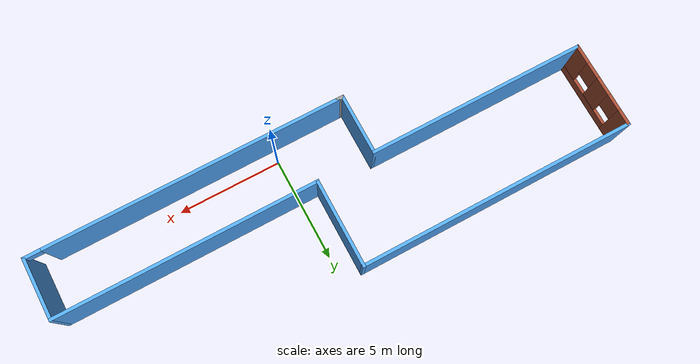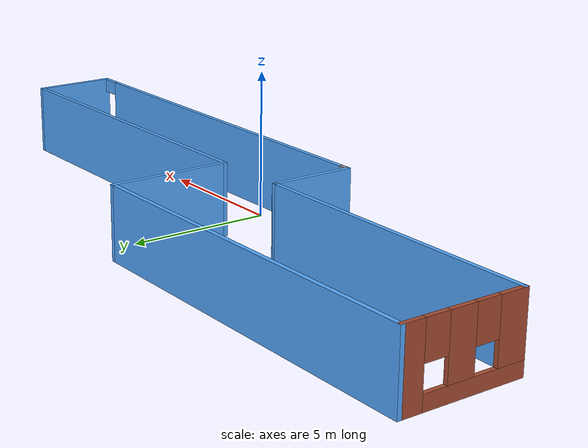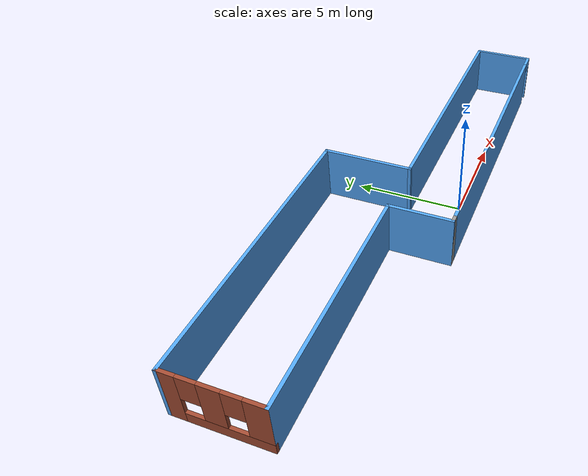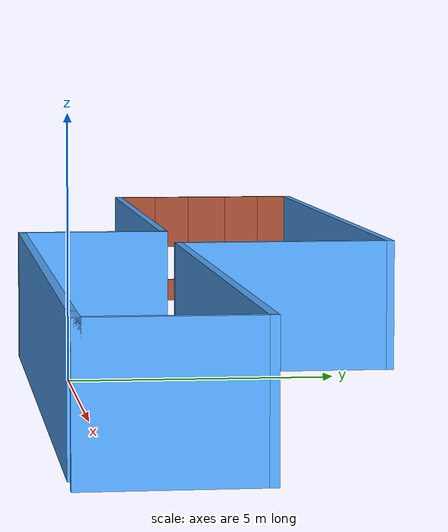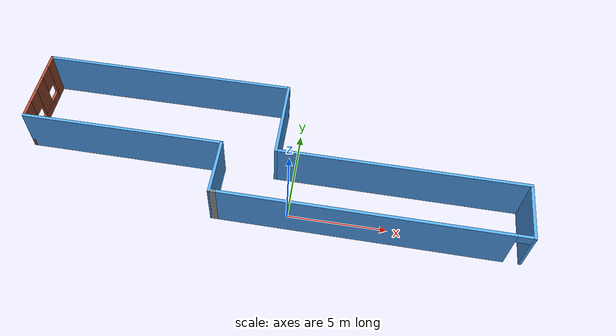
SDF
<?xml version='1.0'?>
<sdf version='1.6'>
  <model name='world'>
    <plugin name="welcome_message" filename="libwelcome_message.so"/>
    <pose frame=''>-1.315 2.805 0 0 -0 0</pose>
    <link name='Wall_0'>
      <pose frame=''>5.3 -3.475 0 0 -0 0</pose>
      <visual name='Wall_0_Visual_0'>
        <pose frame=''>-0.428163 0 1.25 0 -0 0</pose>
        <geometry>
          <box>
            <size>14.1437 0.15 2.5</size>
          </box>
        </geometry>
        <material>
          <script>
            <uri>file://media/materials/scripts/gazebo.material</uri>
            <name>Gazebo/Grey</name>
          </script>
          <ambient>0.333333 0.666667 1 1</ambient>
        </material>
        <meta>
          <layer>0</layer>
        </meta>
      </visual>
      <collision name='Wall_0_Collision_0'>
        <geometry>
          <box>
            <size>14.1437 0.15 2.5</size>
          </box>
        </geometry>
        <pose frame=''>-0.428163 0 1.25 0 -0 0</pose>
      </collision>
      <visual name='Wall_0_Visual_1'>
        <pose frame=''>7.07184 0 2.25 0 -0 0</pose>
        <geometry>
          <box>
            <size>0.856327 0.15 0.5</size>
          </box>
        </geometry>
        <material>
          <script>
            <uri>file://media/materials/scripts/gazebo.material</uri>
            <name>Gazebo/Grey</name>
          </script>
          <ambient>0.333333 0.666667 1 1</ambient>
        </material>
        <meta>
          <layer>0</layer>
        </meta>
      </visual>
      <collision name='Wall_0_Collision_1'>
        <geometry>
          <box>
            <size>0.856327 0.15 0.5</size>
          </box>
        </geometry>
        <pose frame=''>7.07184 0 2.25 0 -0 0</pose>
      </collision>
    </link>
    <link name='Wall_1'>
      <collision name='Wall_1_Collision'>
        <geometry>
          <box>
            <size>3 0.15 2.5</size>
          </box>
        </geometry>
        <pose frame=''>0 0 1.25 0 -0 0</pose>
      </collision>
      <visual name='Wall_1_Visual'>
        <pose frame=''>0 0 1.25 0 -0 0</pose>
        <geometry>
          <box>
            <size>3 0.15 2.5</size>
          </box>
        </geometry>
        <material>
          <script>
            <uri>file://media/materials/scripts/gazebo.material</uri>
            <name>Gazebo/Grey</name>
          </script>
          <ambient>0.333333 0.666667 1 1</ambient>
        </material>
        <meta>
          <layer>0</layer>
        </meta>
      </visual>
      <pose frame=''>12.725 -2.05 0 0 -0 1.5708</pose>
    </link>
    <link name='Wall_2'>
      <collision name='Wall_2_Collision'>
        <geometry>
          <box>
            <size>12.5 0.15 2.5</size>
          </box>
        </geometry>
        <pose frame=''>0 0 1.25 0 -0 0</pose>
      </collision>
      <visual name='Wall_2_Visual'>
        <pose frame=''>0 0 1.25 0 -0 0</pose>
        <geometry>
          <box>
            <size>12.5 0.15 2.5</size>
          </box>
        </geometry>
        <material>
          <script>
            <uri>file://media/materials/scripts/gazebo.material</uri>
            <name>Gazebo/Grey</name>
          </script>
          <ambient>0.333333 0.666667 1 1</ambient>
        </material>
        <meta>
          <layer>0</layer>
        </meta>
      </visual>
      <pose frame=''>6.55 -0.625 0 0 -0 3.14159</pose>
    </link>
    <link name='Wall_3'>
      <collision name='Wall_3_Collision'>
        <geometry>
          <box>
            <size>4.25 0.15 2.5</size>
          </box>
        </geometry>
        <pose frame=''>0 0 1.25 0 -0 0</pose>
      </collision>
      <visual name='Wall_3_Visual'>
        <pose frame=''>0 0 1.25 0 -0 0</pose>
        <geometry>
          <box>
            <size>4.25 0.15 2.5</size>
          </box>
        </geometry>
        <material>
          <script>
            <uri>file://media/materials/scripts/gazebo.material</uri>
            <name>Gazebo/Grey</name>
          </script>
          <ambient>0.333333 0.666667 1 1</ambient>
        </material>
        <meta>
          <layer>0</layer>
        </meta>
      </visual>
      <pose frame=''>0.375 1.425 0 0 -0 1.5708</pose>
    </link>
    <link name='Wall_4'>
      <collision name='Wall_4_Collision'>
        <geometry>
          <box>
            <size>13.25 0.15 2.5</size>
          </box>
        </geometry>
        <pose frame=''>0 0 1.25 0 -0 0</pose>
      </collision>
      <visual name='Wall_4_Visual'>
        <pose frame=''>0 0 1.25 0 -0 0</pose>
        <geometry>
          <box>
            <size>13.25 0.15 2.5</size>
          </box>
        </geometry>
        <material>
          <script>
            <uri>file://media/materials/scripts/gazebo.material</uri>
            <name>Gazebo/Grey</name>
          </script>
          <ambient>0.333333 0.666667 1 1</ambient>
        </material>
        <meta>
          <layer>0</layer>
        </meta>
      </visual>
      <pose frame=''>-6.175 3.475 0 0 -0 3.14159</pose>
    </link>
    <link name='Wall_5'>
      <pose frame=''>-12.725 1.425 0 0 0 -1.5708</pose>
      <visual name='Wall_5_Visual_0'>
        <pose frame=''>-1.72505 0 1.25 0 -0 0</pose>
        <geometry>
          <box>
            <size>0.799901 0.15 2.5</size>
          </box>
        </geometry>
        <material>
          <script>
            <uri>file://media/materials/scripts/gazebo.material</uri>
            <name>Gazebo/Bricks</name>
          </script>
          <ambient>0.333333 0.666667 1 1</ambient>
        </material>
        <meta>
          <layer>0</layer>
        </meta>
      </visual>
      <collision name='Wall_5_Collision_0'>
        <geometry>
          <box>
            <size>0.799901 0.15 2.5</size>
          </box>
        </geometry>
        <pose frame=''>-1.72505 0 1.25 0 -0 0</pose>
      </collision>
      <visual name='Wall_5_Visual_1'>
        <pose frame=''>0.399951 0 0.25 0 -0 0</pose>
        <geometry>
          <box>
            <size>3.4501 0.15 0.5</size>
          </box>
        </geometry>
        <material>
          <script>
            <uri>file://media/materials/scripts/gazebo.material</uri>
            <name>Gazebo/Bricks</name>
          </script>
          <ambient>0.333333 0.666667 1 1</ambient>
        </material>
        <meta>
          <layer>0</layer>
        </meta>
      </visual>
      <collision name='Wall_5_Collision_1'>
        <geometry>
          <box>
            <size>3.4501 0.15 0.5</size>
          </box>
        </geometry>
        <pose frame=''>0.399951 0 0.25 0 -0 0</pose>
      </collision>
      <visual name='Wall_5_Visual_2'>
        <pose frame=''>-0.078699 0 1.5 0 -0 0</pose>
        <geometry>
          <box>
            <size>0.8928 0.15 2</size>
          </box>
        </geometry>
        <material>
          <script>
            <uri>file://media/materials/scripts/gazebo.material</uri>
            <name>Gazebo/Bricks</name>
          </script>
          <ambient>0.333333 0.666667 1 1</ambient>
        </material>
        <meta>
          <layer>0</layer>
        </meta>
      </visual>
      <collision name='Wall_5_Collision_2'>
        <geometry>
          <box>
            <size>0.8928 0.15 2</size>
          </box>
        </geometry>
        <pose frame=''>-0.078699 0 1.5 0 -0 0</pose>
      </collision>
      <visual name='Wall_5_Visual_3'>
        <pose frame=''>1.64635 0 1.5 0 -0 0</pose>
        <geometry>
          <box>
            <size>0.957299 0.15 2</size>
          </box>
        </geometry>
        <material>
          <script>
            <uri>file://media/materials/scripts/gazebo.material</uri>
            <name>Gazebo/Bricks</name>
          </script>
          <ambient>0.333333 0.666667 1 1</ambient>
        </material>
        <meta>
          <layer>0</layer>
        </meta>
      </visual>
      <collision name='Wall_5_Collision_3'>
        <geometry>
          <box>
            <size>0.957299 0.15 2</size>
          </box>
        </geometry>
        <pose frame=''>1.64635 0 1.5 0 -0 0</pose>
      </collision>
      <visual name='Wall_5_Visual_4'>
        <pose frame=''>-0.925099 0 1.9 0 -0 0</pose>
        <geometry>
          <box>
            <size>0.8 0.15 1.2</size>
          </box>
        </geometry>
        <material>
          <script>
            <uri>file://media/materials/scripts/gazebo.material</uri>
            <name>Gazebo/Bricks</name>
          </script>
          <ambient>0.333333 0.666667 1 1</ambient>
        </material>
        <meta>
          <layer>0</layer>
        </meta>
      </visual>
      <collision name='Wall_5_Collision_4'>
        <geometry>
          <box>
            <size>0.8 0.15 1.2</size>
          </box>
        </geometry>
        <pose frame=''>-0.925099 0 1.9 0 -0 0</pose>
      </collision>
      <visual name='Wall_5_Visual_5'>
        <pose frame=''>0.767701 0 1.9 0 -0 0</pose>
        <geometry>
          <box>
            <size>0.8 0.15 1.2</size>
          </box>
        </geometry>
        <material>
          <script>
            <uri>file://media/materials/scripts/gazebo.material</uri>
            <name>Gazebo/Bricks</name>
          </script>
          <ambient>0.333333 0.666667 1 1</ambient>
        </material>
        <meta>
          <layer>0</layer>
        </meta>
      </visual>
      <collision name='Wall_5_Collision_5'>
        <geometry>
          <box>
            <size>0.8 0.15 1.2</size>
          </box>
        </geometry>
        <pose frame=''>0.767701 0 1.9 0 -0 0</pose>
      </collision>
    </link>
    <link name='Wall_6'>
      <collision name='Wall_6_Collision'>
        <geometry>
          <box>
            <size>10.5 0.15 2.5</size>
          </box>
        </geometry>
        <pose frame=''>0 0 1.25 0 -0 0</pose>
      </collision>
      <visual name='Wall_6_Visual'>
        <pose frame=''>0 0 1.25 0 -0 0</pose>
        <geometry>
          <box>
            <size>10.5 0.15 2.5</size>
          </box>
        </geometry>
        <material>
          <script>
            <uri>file://media/materials/scripts/gazebo.material</uri>
            <name>Gazebo/Grey</name>
          </script>
          <ambient>0.333333 0.666667 1 1</ambient>
        </material>
        <meta>
          <layer>0</layer>
        </meta>
      </visual>
      <pose frame=''>-7.55 -0.625 0 0 -0 0</pose>
    </link>
    <link name='Wall_7'>
      <collision name='Wall_7_Collision'>
        <geometry>
          <box>
            <size>3 0.15 2.5</size>
          </box>
        </geometry>
        <pose frame=''>0 0 1.25 0 -0 0</pose>
      </collision>
      <visual name='Wall_7_Visual'>
        <pose frame=''>0 0 1.25 0 -0 0</pose>
        <geometry>
          <box>
            <size>3 0.15 2.5</size>
          </box>
        </geometry>
        <material>
          <script>
            <uri>file://media/materials/scripts/gazebo.material</uri>
            <name>Gazebo/Grey</name>
          </script>
          <ambient>0.333333 0.666667 1 1</ambient>
        </material>
        <meta>
          <layer>0</layer>
        </meta>
      </visual>
      <pose frame=''>-2.375 -2.05 0 0 0 -1.5708</pose>
    </link>
    <link name='Wall_8'>
      <collision name='Wall_8_Collision'>
        <geometry>
          <box>
            <size>0.4 0.15 2.5</size>
          </box>
        </geometry>
        <pose frame=''>0 0 1.25 0 -0 0</pose>
      </collision>
      <visual name='Wall_8_Visual'>
        <pose frame=''>0 0 1.25 0 -0 0</pose>
        <geometry>
          <box>
            <size>0.4 0.15 2.5</size>
          </box>
        </geometry>
        <material>
          <script>
            <uri>file://media/materials/scripts/gazebo.material</uri>
            <name>Gazebo/Grey</name>
          </script>
          <ambient>1 1 1 1</ambient>
        </material>
        <meta>
          <layer>0</layer>
        </meta>
      </visual>
      <pose frame=''>-2.25 -3.475 0 0 -0 0</pose>
    </link>
    <static>1</static>
  </model>
</sdf>
